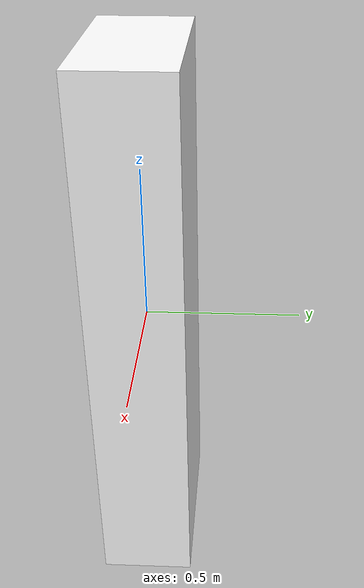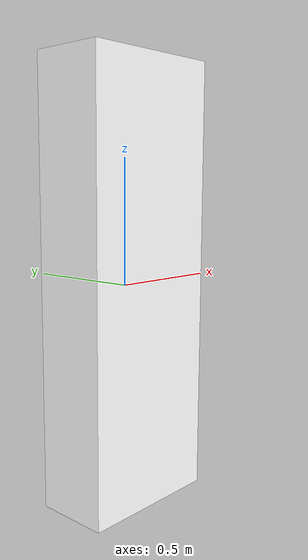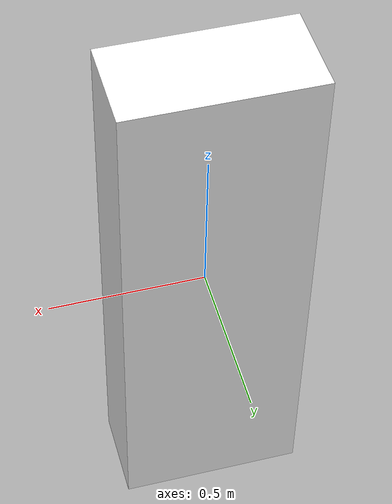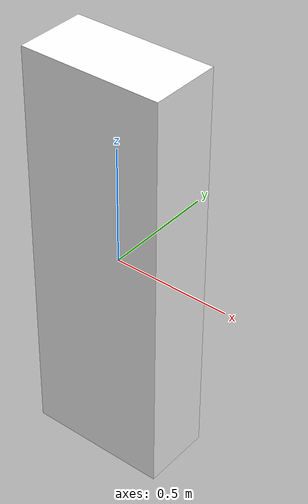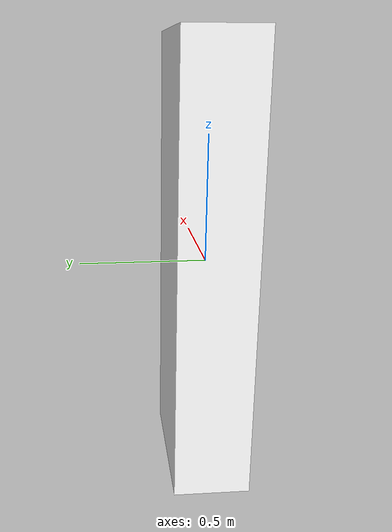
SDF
<?xml version="1.0" ?>
<sdf version="1.6">
  <model name="operario_autorizado">
    <static>true</static> <link name="link">
      <collision name="collision">
        <geometry>
          <box>
            <size>0.6 0.3 1.75</size>
          </box>
        </geometry>
      </collision>

      <visual name="visual">
        <geometry>
          <box>
            <size>0.6 0.3 1.75</size>
          </box>
        </geometry>
        <material>
          <ambient>1 1 1 1</ambient>
          <diffuse>1 1 1 1</diffuse>
          <pbr>
            <metal>
              <albedo_map>model://operario_autorizado/materials/textures/foto_operario.png</albedo_map>
              <roughness>1.0</roughness>
              <metalness>0.0</metalness>
            </metal>
          </pbr>
        </material>
      </visual>
    </link>
  </model>
</sdf>
